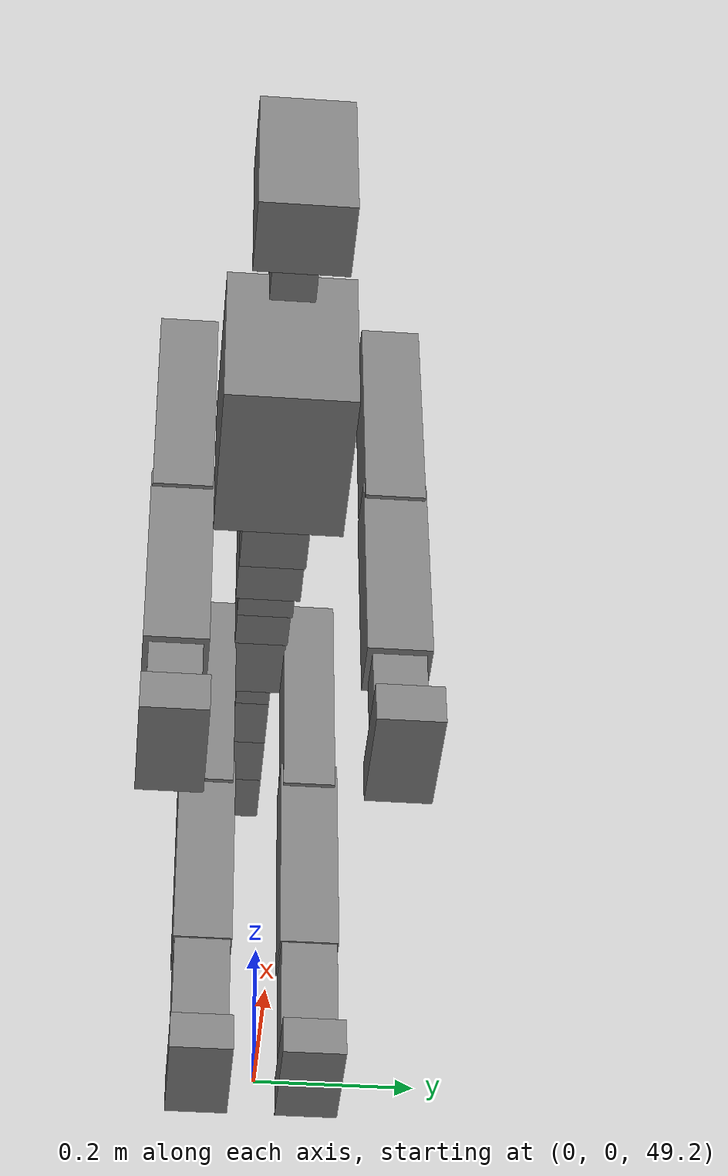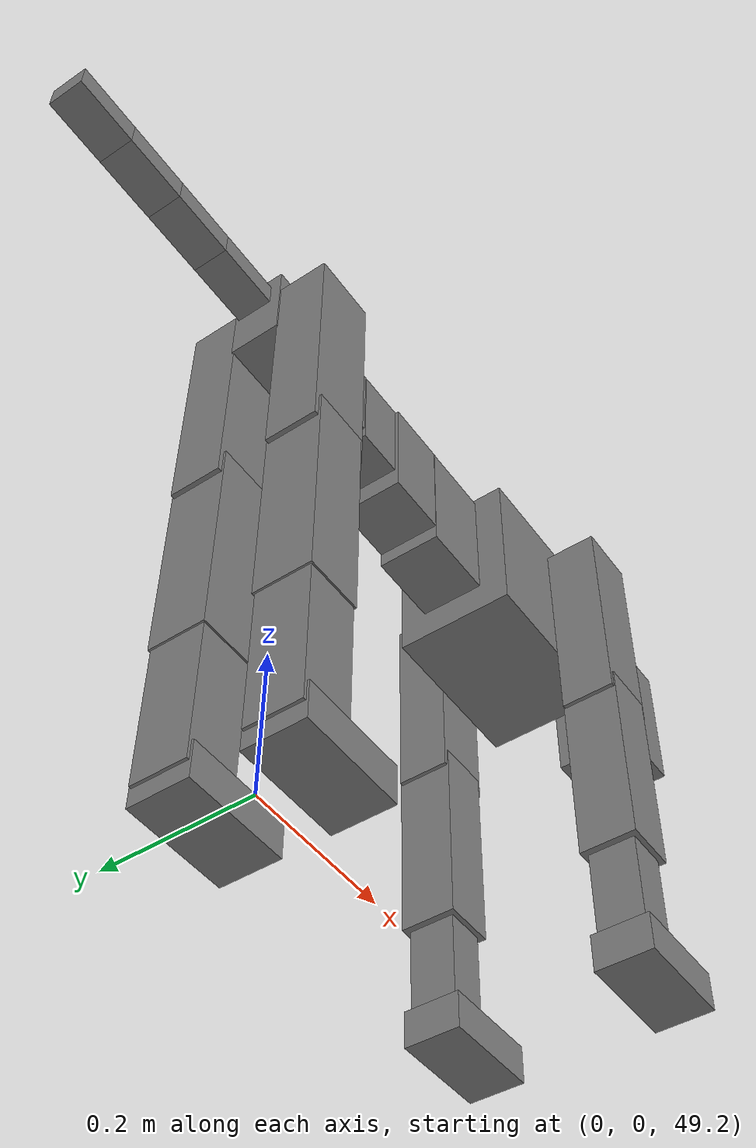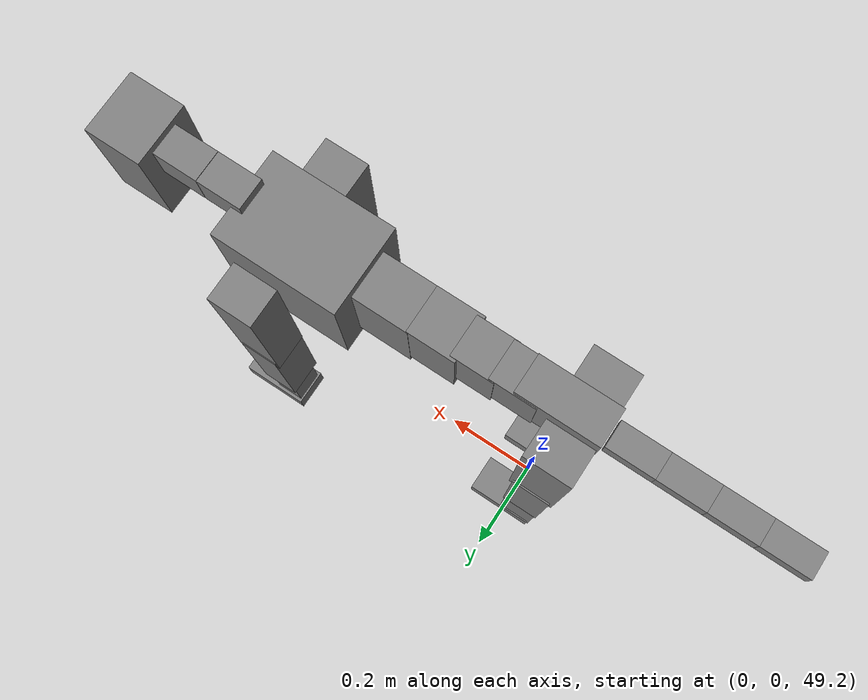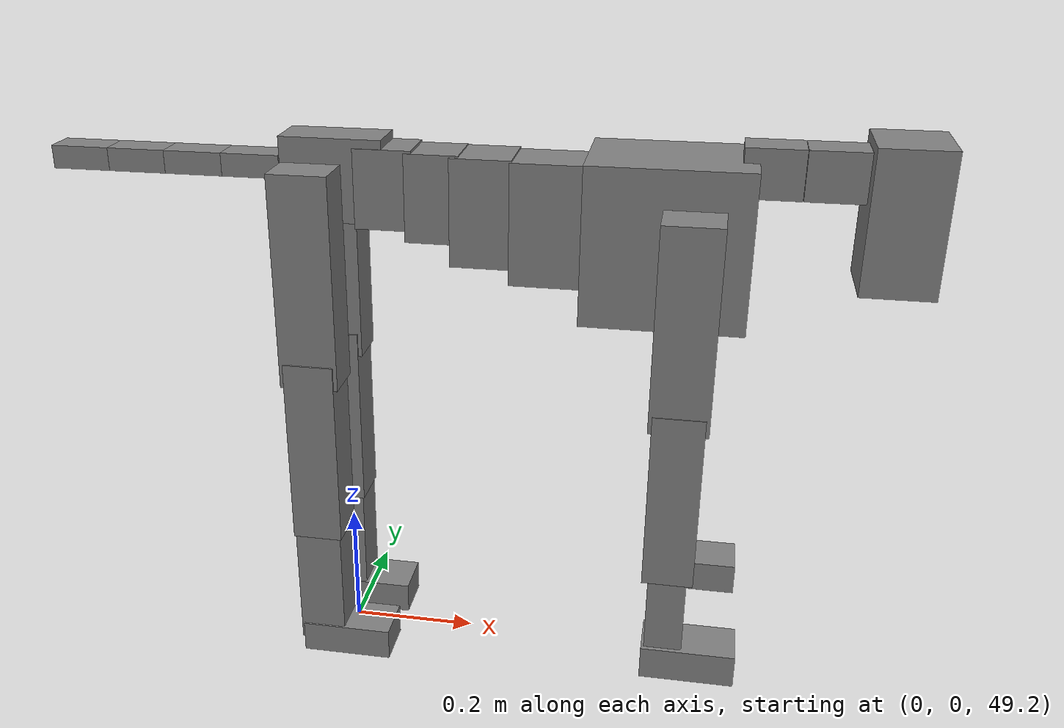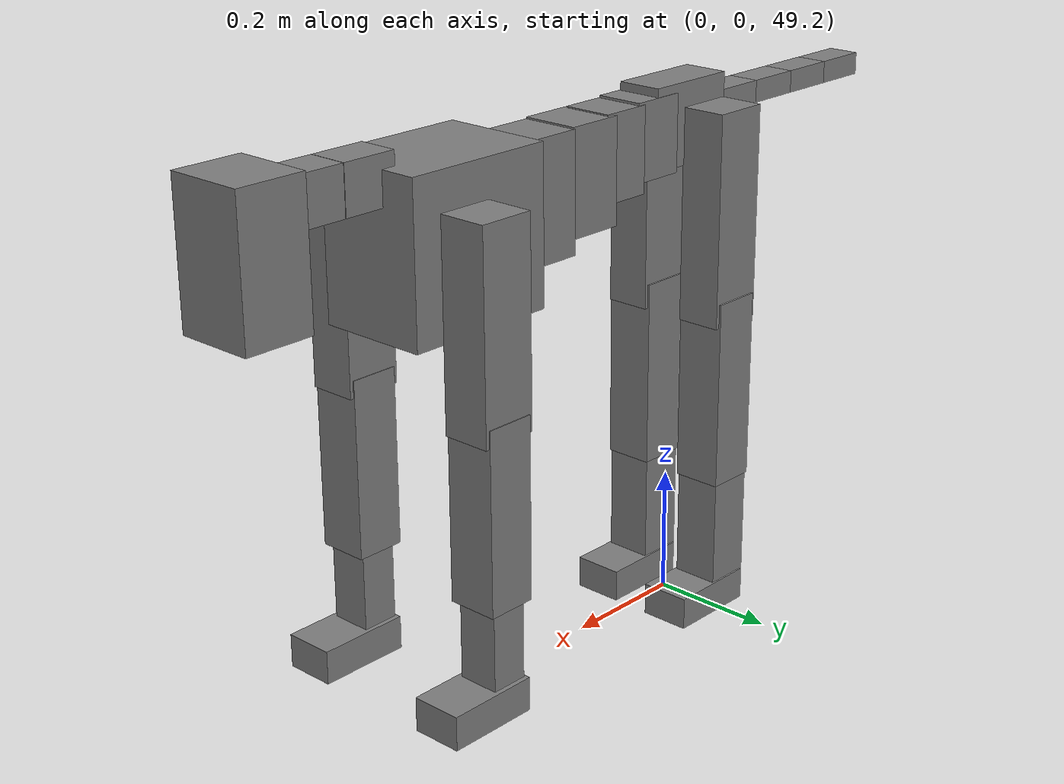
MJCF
<mujoco model="dog">

    <default>
        <joint armature="0.02" stiffness="1" damping="0.2" limited="true" />
        <geom condim="3" friction="1 0.05 0.05" margin="0.01" />
        <motor ctrllimited="true" ctrlrange="-1.0 1.0" forcelimited="true" gear="50" />
    </default>

    <compiler inertiafromgeom="true" angle="radian" />

    <option timestep="0.016" iterations="50" tolerance="1e-10" solver="Newton" jacobian="dense" cone="pyramidal" />

    <size nconmax="20000" njmax="60000" nstack="5000000" />
    <visual>
        <map force="0.1" zfar="30" />
        <rgba haze="0.15 0.25 0.35 1" />
        <quality shadowsize="2048" />
        <global offwidth="800" offheight="800" />
    </visual>

    <asset>
        <texture type="skybox" builtin="gradient" rgb1="0.3 0.5 0.7" rgb2="0 0 0" width="512" height="512" />
        <texture name="texplane" type="2d" builtin="checker" rgb1=".2 .3 .4" rgb2=".1 0.15 0.2" width="512" height="512" mark="cross" markrgb=".8 .8 .8" />
        <texture name="texgeom" type="cube" builtin="flat" mark="cross" width="127" height="1278" rgb1="0.8 0.6 0.4" rgb2="0.8 0.6 0.4" markrgb="1 1 1" random="0.01" />

        <material name="matplane" reflectance="0.3" texture="texplane" texrepeat="1 1" texuniform="true" />
        <material name="matgeom" texture="texgeom" texuniform="true" rgba="0.8 0.6 .4 1" />
    </asset>

    <worldbody>
        <geom name="floor" pos="0 0 0" size="0 0 .25" type="plane" material="matplane" condim="3" />

        <light directional="false" diffuse=".2 .2 .2" specular="0 0 0" pos="0 0 5" dir="0 0 -1" castshadow="false" />
        <light mode="targetbodycom" target="torso" directional="false" diffuse=".8 .8 .8" specular="0.3 0.3 0.3" pos="0 0 4.0" dir="0 0 -1" />

        <body name="root" pos="0 0 50">
            <freejoint name="root_1" />
            <geom type="box" pos="0 0 -0.02" size="0.0774  0.0358  0.063" density="2030" />

            <body name="spine1" pos="0.054 0 0">
                <joint name="spine1_y" axis="0 1 0" range="0 0.7" limited="true" />
                <geom type="box" pos="0.02375 0 -0.03" size="0.04375  0.0375  0.05985" density="2030" />

                <body name="spine2" pos="0.0612 0 0">
                    <joint name="spine2_y" axis="0 1 0" range="-0.15 0.15" limited="true" />
                    <geom type="box" pos="0.03555  0  -0.04" size="0.04055  0.039  0.06615" density="2030" />

                    <body name="spine3" pos="0.0730 0 0">
                        <joint name="spine3_y" axis="0 1 0" range="-0.15 0.15" limited="true" />
                        <geom type="box" pos="0.03555  0  -0.057" size="0.04555  0.0445  0.081" density="2030" />

                        <body name="spine4" pos="0.0780 0 0">
                            <joint name="spine4_y" axis="0 1 0" range="-0.15 0.15" limited="true" />
                            <geom type="box" pos="0.05265  0  -0.07" size="0.05265  0.045  0.09135" density="2030" />

                            <body name="torso" pos="0.1082 0 0">
                                <joint name="torso_y" axis="0 1 0" range="-0.15 0.15" limited="true" />
                                <geom type="box" pos="0.11925  0  -0.085" size="0.11925  0.085  0.11745" density="2030" />

                                <body name="neck1" pos="0.2160  0   0.0180">
                                    <joint name="neck1_y" axis="0 1 0" range="-1.2  -1" limited="true" />
                                    <geom type="box" pos="0.0423  0  0" size="0.0423  0.03  0.036" density="2325" />

                                    <body name="neck2" pos="0.0853  0  0">
                                        <joint name="neck2_y" axis="0 1 0" range="0.1  0" limited="true" />
                                        <geom type="box" pos="0.0423  0  0" size="0.0423  0.03  0.036" density="2325" />

                                        <body name="head" pos="0.0853  0  0">
                                            <joint name="head_y" axis="0 1 0" range="-0.3  -0.2" limited="true" />
                                            <geom type="box" pos="0.0531  0  -0.055" size="0.0531  0.06  0.1044" density="4030" />

                                        </body>
                                    </body>
                                </body>

                                <body name="front_shoulder" pos="0.156  0   -0.0480">
                                    <joint name="front_shoulder_y" axis="0 1 0" range="-1 1.5" limited="true" />
                                    <geom type="box" pos="0 0.13 -0.1254" size="0.0432  0.0369  0.1521" density="1158" />
                                    <geom type="box" pos="0 -0.13 -0.1254" size="0.0432  0.0369  0.1521" density="1158" />

                                    <body name="front_elbow" pos="0  0  -0.2509">
                                        <joint name="front_elbow_y" axis="0 1 0" range="-2 0" limited="true" />
                                        <geom type="box" pos="0 0.13 -0.1366" size="0.0378  0.0386  0.1366" density="1081" />
                                        <geom type="box" pos="0 -0.13 -0.1366" size="0.0378  0.0386  0.1366" density="1081" />

                                        <body name="front_wrist" pos="0  0  -0.2732">
                                            <joint name="front_wrist_y" axis="0 1 0" range="-0.2 0" limited="true" />
                                            <geom type="box" pos="0 0.13 -0.0669" size="0.0286  0.0318  0.0800" density="1664" />
                                            <geom type="box" pos="0 -0.13 -0.0669" size="0.0286  0.0318  0.0800" density="1664" />

                                            <body name="front_finger_end" pos="0  0  -0.1338">
                                                <joint name="front_finger_y" axis="0 1 0" range="-0.4 1" limited="true" />
                                                <geom type="box" pos="0.0389  0.13  -0.0108" size="0.0714  0.0389  0.0258" density="1515" />
                                                <geom type="box" pos="0.0389  -0.13  -0.0108" size="0.0714  0.0389  0.0258" density="1515" />

                                            </body>

                                        </body>
                                    </body>
                                </body>

                            </body>
                        </body>
                    </body>
                </body>
            </body>

            <body name="back_hip" pos="-0.03 0 -0.018">
                <joint name="back_hip_y" axis="0 1 0" range="-1.5 0.3" limited="true" />
                <geom type="box" pos="0 0.07 -0.1430" size="0.0453  0.0355  0.1658" density="1154" />
                <geom type="box" pos="0 -0.07 -0.1430" size="0.0453  0.0355  0.1658" density="1154" />

                <body name="back_knee" pos="0  0  -0.2860">
                    <joint name="back_knee_y" axis="0 1 0" range="0 2.8" limited="true" />
                    <geom type="box" pos="0 0.07 -0.1344" size="0.0392  0.0386  0.1499" density="1227" />
                    <geom type="box" pos="0 -0.07 -0.1344" size="0.0392  0.0386  0.1499" density="1227" />

                    <body name="back_ankle" pos="0  0  -0.2687">
                        <joint name="back_ankle_y" axis="0 1 0" range="-2.2 0" limited="true" />
                        <geom type="box" pos="0 0.07 -0.0997" size="0.0367  0.0367  0.1109" density="1284" />
                        <geom type="box" pos="0 -0.07 -0.0997" size="0.0367  0.0367  0.1109" density="1284" />

                        <body name="back_toe_end" pos="0  0  -0.1993">
                            <joint name="back_toe_y" axis="0 1 0" range="-0.4 1" limited="true" />
                            <geom type="box" pos="0.0396  0.07  -0.0104" size="0.0725  0.0396  0.0254" density="1515" />
                            <geom type="box" pos="0.0396  -0.07  -0.0104" size="0.0725  0.0396  0.0254" density="1515" />

                        </body>
                    </body>
                </body>
            </body>

            <body name="tail1" pos="-0.074 0 -0.006">
                <joint name="tail1_y" axis="0 1 0" range="-0.2 0.2" limited="true" />
                <geom type="box" pos="-0.0536  0  0" size="0.045  0.025  0.0175" density="1587" />

                <body name="tail2" pos="-0.09 0 0">
                    <joint name="tail2_y" axis="0 1 0" range="-0.2 0.2" limited="true" />
                    <geom type="box" pos="-0.0536  0  0" size="0.045  0.025  0.0175" density="1587" />

                    <body name="tail3" pos="-0.09 0 0">
                        <joint name="tail3_y" axis="0 1 0" range="-0.2 0.2" limited="true" />
                        <geom type="box" pos="-0.0536  0  0" size="0.045  0.025  0.0175" density="1587" />

                        <body name="tail4" pos="-0.09 0 0">
                            <joint name="tail4_y" axis="0 1 0" range="-0.2 0.2" limited="true" />
                            <geom type="box" pos="-0.0536  0  0" size="0.045  0.025  0.0175" density="1587" />

                        </body>
                    </body>
                </body>
            </body>
        </body>
    </worldbody>

    <actuator>
        <motor joint="spine1_y" forcerange="-150 150     " />
        <motor joint="spine2_y" forcerange="-150 150     " />
        <motor joint="spine3_y" forcerange="-150 150     " />
        <motor joint="spine4_y" forcerange="-150 150     " />
        <motor joint="torso_y" forcerange="-150 150     " />
        <motor joint="neck1_y" forcerange="-100 100       " />
        <motor joint="neck2_y" forcerange="-100 100       " />
        <motor joint="head_y" forcerange="-150 150       " />
        <motor joint="front_shoulder_y" forcerange="-166.39 179.55" />
        <motor joint="front_elbow_y" forcerange="-187.84 192.89" />
        <motor joint="front_wrist_y" forcerange="-131.80 122.86" />
        <motor joint="front_finger_y" forcerange="-69.60 98.07" />
        <motor joint="back_hip_y" forcerange="-316.05 357.58" />
        <motor joint="back_knee_y" forcerange="-379.64 382.08" />
        <motor joint="back_angle_y" forcerange="-245.92 240.88" />
        <motor joint="back_toe_y" forcerange="-107.49 128.93" />
        <motor joint="tail1_y" forcerange="-50 50     " />
        <motor joint="tail2_y" forcerange="-50 50     " />
        <motor joint="tail3_y" forcerange="-50 50     " />
        <motor joint="tail4_y" forcerange="-50 50     " />
    </actuator>
</mujoco>
